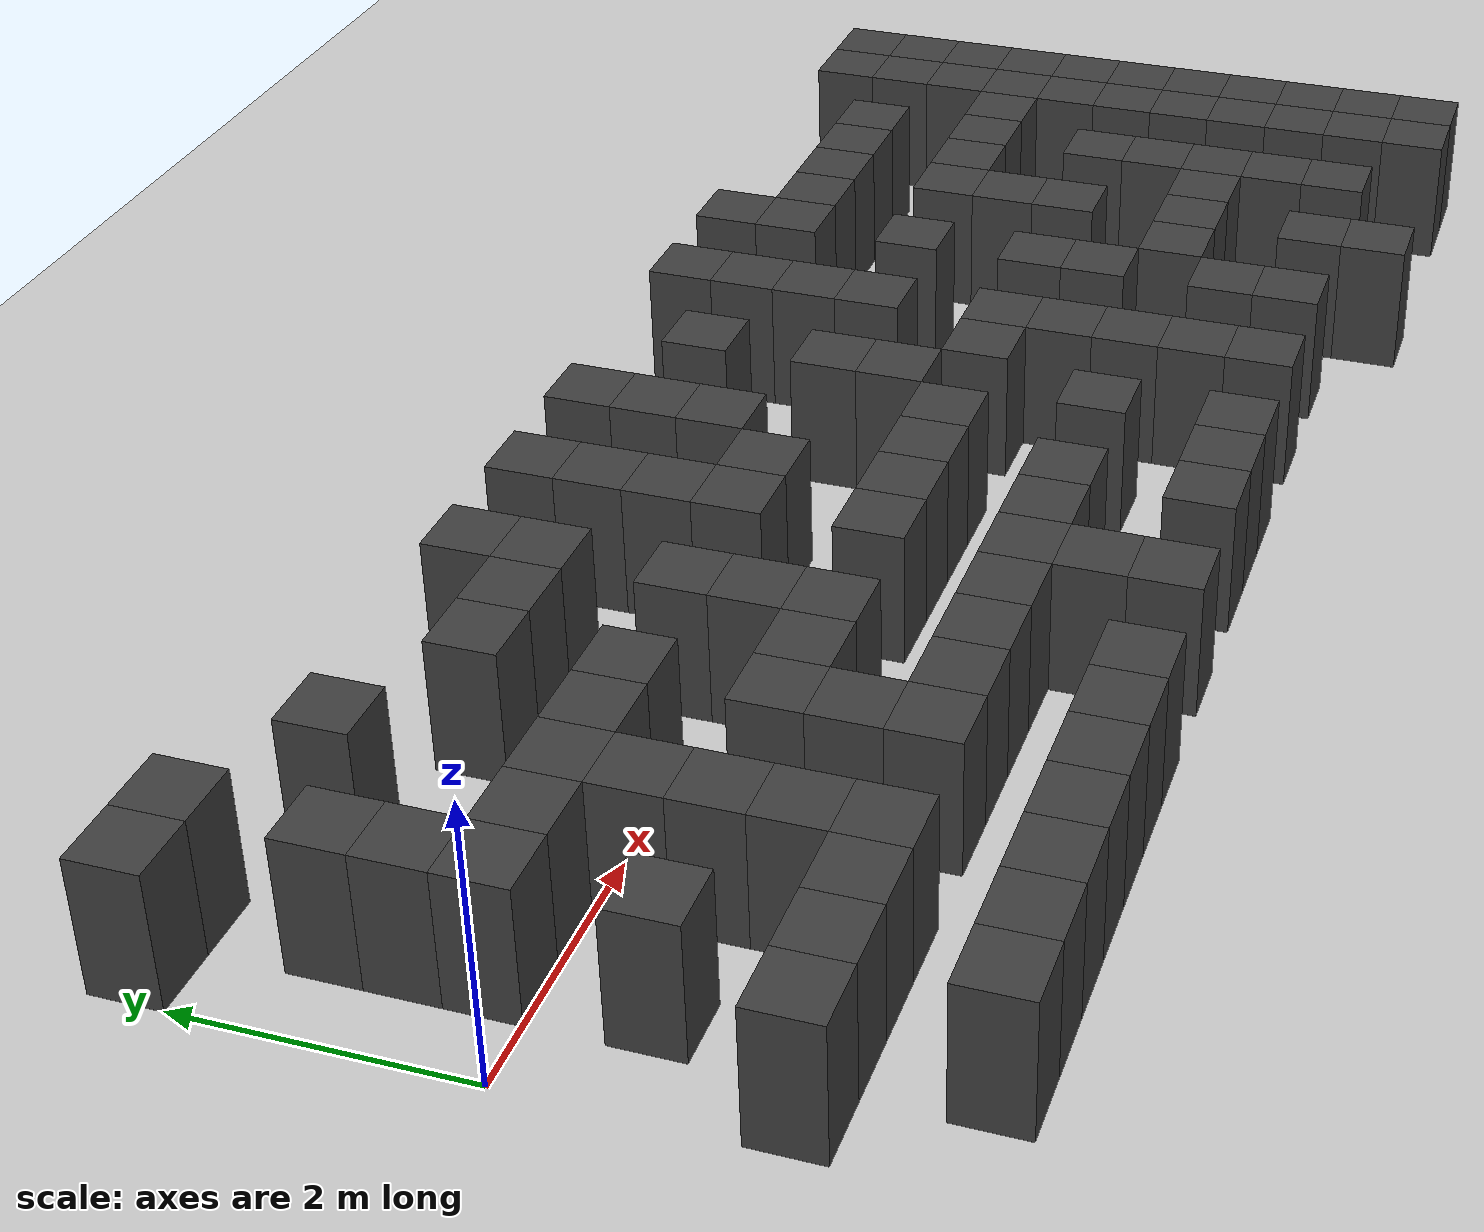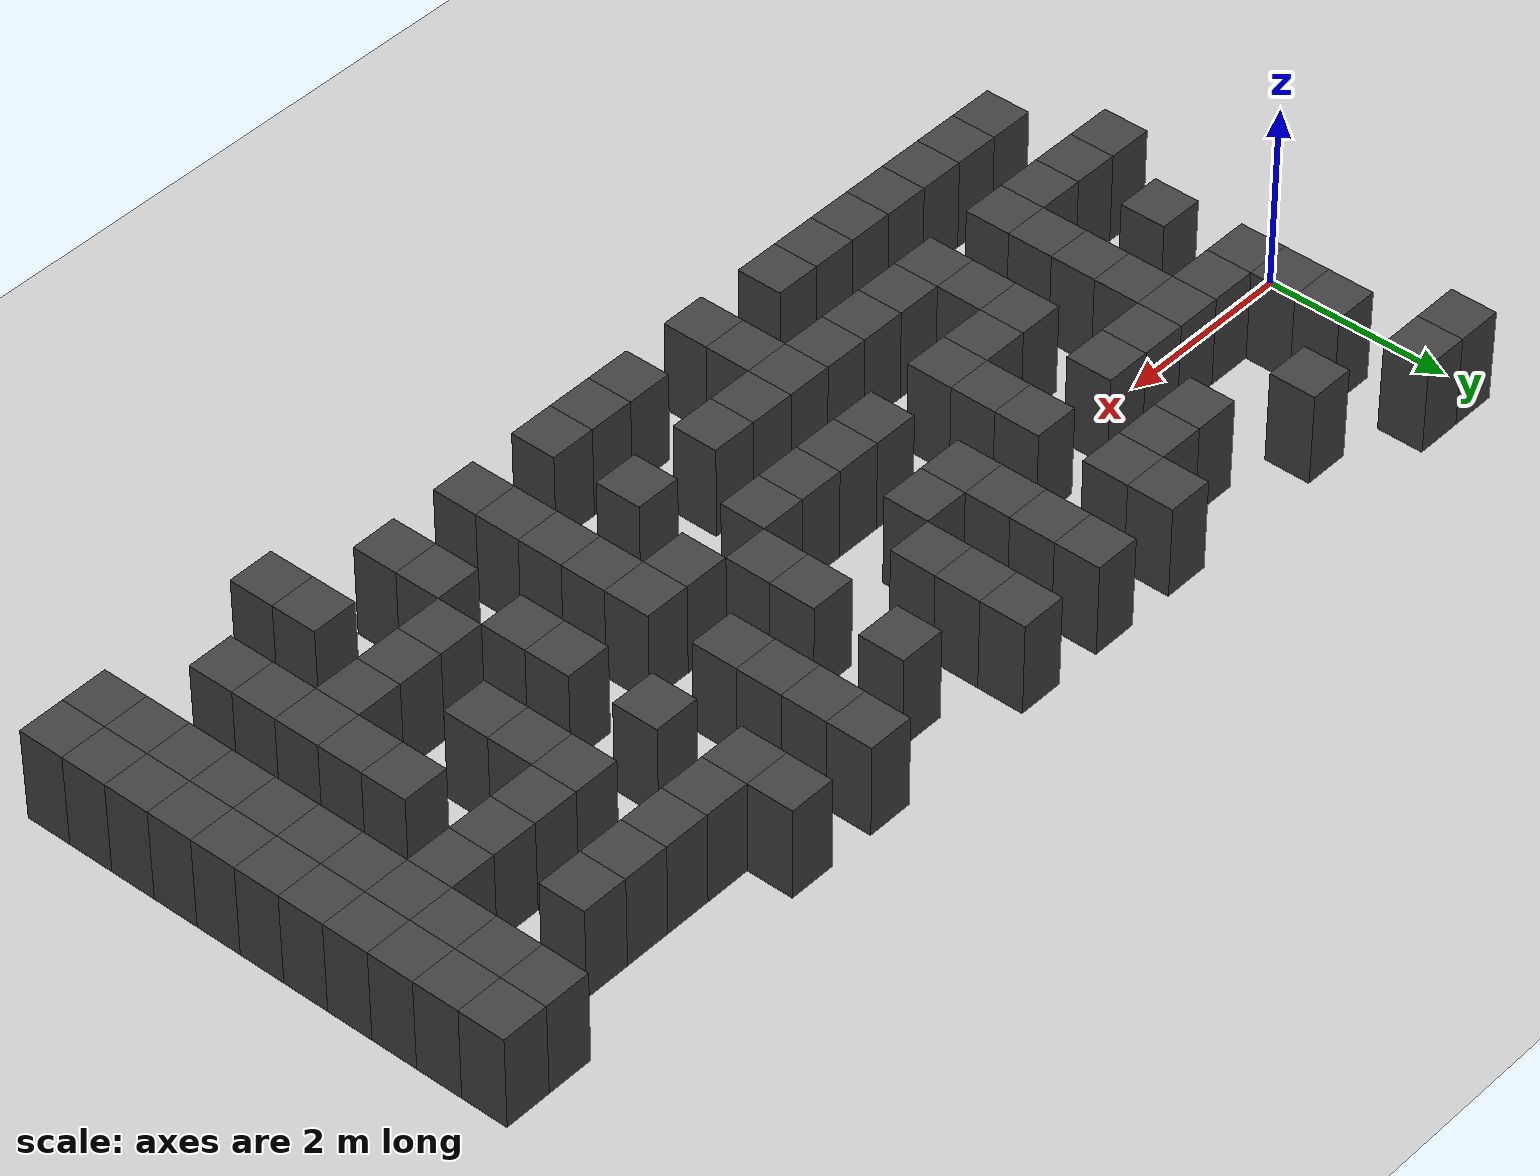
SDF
<sdf version="1.7">
 <world name="map_15497">
  <model name="ground_plane">
   <static>true</static>
   <link name="link">
    <collision name="collision">
     <geometry><plane><normal>0 0 1</normal><size>200 200</size></plane></geometry>
    </collision>
    <visual name="visual">
     <geometry><plane><normal>0 0 1</normal><size>200 200</size></plane></geometry>
     <material><ambient>0.8 0.8 0.8 1</ambient><diffuse>0.8 0.8 0.8 1</diffuse></material>
    </visual>
   </link>
  </model>
  <model name="maze_environment">
   <static>true</static>
   <link name="wall_480">
    <pose>0.250 2.250 0.500 0 0 0</pose>
    <collision name="col"><geometry><box><size>0.5 0.5 1.0</size></box></geometry></collision>
    <visual name="vis">
     <geometry><box><size>0.5 0.5 1.0</size></box></geometry>
     <material><ambient>0.15 0.15 0.15 1</ambient><diffuse>0.25 0.25 0.25 1</diffuse></material>
    </visual>
   </link>
   <link name="wall_481">
    <pose>0.750 2.250 0.500 0 0 0</pose>
    <collision name="col"><geometry><box><size>0.5 0.5 1.0</size></box></geometry></collision>
    <visual name="vis">
     <geometry><box><size>0.5 0.5 1.0</size></box></geometry>
     <material><ambient>0.15 0.15 0.15 1</ambient><diffuse>0.25 0.25 0.25 1</diffuse></material>
    </visual>
   </link>
   <link name="wall_502">
    <pose>1.750 1.750 0.500 0 0 0</pose>
    <collision name="col"><geometry><box><size>0.5 0.5 1.0</size></box></geometry></collision>
    <visual name="vis">
     <geometry><box><size>0.5 0.5 1.0</size></box></geometry>
     <material><ambient>0.15 0.15 0.15 1</ambient><diffuse>0.25 0.25 0.25 1</diffuse></material>
    </visual>
   </link>
   <link name="wall_503">
    <pose>3.750 1.750 0.500 0 0 0</pose>
    <collision name="col"><geometry><box><size>0.5 0.5 1.0</size></box></geometry></collision>
    <visual name="vis">
     <geometry><box><size>0.5 0.5 1.0</size></box></geometry>
     <material><ambient>0.15 0.15 0.15 1</ambient><diffuse>0.25 0.25 0.25 1</diffuse></material>
    </visual>
   </link>
   <link name="wall_504">
    <pose>4.750 1.750 0.500 0 0 0</pose>
    <collision name="col"><geometry><box><size>0.5 0.5 1.0</size></box></geometry></collision>
    <visual name="vis">
     <geometry><box><size>0.5 0.5 1.0</size></box></geometry>
     <material><ambient>0.15 0.15 0.15 1</ambient><diffuse>0.25 0.25 0.25 1</diffuse></material>
    </visual>
   </link>
   <link name="wall_505">
    <pose>5.750 1.750 0.500 0 0 0</pose>
    <collision name="col"><geometry><box><size>0.5 0.5 1.0</size></box></geometry></collision>
    <visual name="vis">
     <geometry><box><size>0.5 0.5 1.0</size></box></geometry>
     <material><ambient>0.15 0.15 0.15 1</ambient><diffuse>0.25 0.25 0.25 1</diffuse></material>
    </visual>
   </link>
   <link name="wall_506">
    <pose>7.750 1.750 0.500 0 0 0</pose>
    <collision name="col"><geometry><box><size>0.5 0.5 1.0</size></box></geometry></collision>
    <visual name="vis">
     <geometry><box><size>0.5 0.5 1.0</size></box></geometry>
     <material><ambient>0.15 0.15 0.15 1</ambient><diffuse>0.25 0.25 0.25 1</diffuse></material>
    </visual>
   </link>
   <link name="wall_507">
    <pose>8.750 1.750 0.500 0 0 0</pose>
    <collision name="col"><geometry><box><size>0.5 0.5 1.0</size></box></geometry></collision>
    <visual name="vis">
     <geometry><box><size>0.5 0.5 1.0</size></box></geometry>
     <material><ambient>0.15 0.15 0.15 1</ambient><diffuse>0.25 0.25 0.25 1</diffuse></material>
    </visual>
   </link>
   <link name="wall_508">
    <pose>11.750 1.750 0.500 0 0 0</pose>
    <collision name="col"><geometry><box><size>0.5 0.5 1.0</size></box></geometry></collision>
    <visual name="vis">
     <geometry><box><size>0.5 0.5 1.0</size></box></geometry>
     <material><ambient>0.15 0.15 0.15 1</ambient><diffuse>0.25 0.25 0.25 1</diffuse></material>
    </visual>
   </link>
   <link name="wall_509">
    <pose>12.250 1.750 0.500 0 0 0</pose>
    <collision name="col"><geometry><box><size>0.5 0.5 1.0</size></box></geometry></collision>
    <visual name="vis">
     <geometry><box><size>0.5 0.5 1.0</size></box></geometry>
     <material><ambient>0.15 0.15 0.15 1</ambient><diffuse>0.25 0.25 0.25 1</diffuse></material>
    </visual>
   </link>
   <link name="wall_531">
    <pose>0.750 1.250 0.500 0 0 0</pose>
    <collision name="col"><geometry><box><size>0.5 0.5 1.0</size></box></geometry></collision>
    <visual name="vis">
     <geometry><box><size>0.5 0.5 1.0</size></box></geometry>
     <material><ambient>0.15 0.15 0.15 1</ambient><diffuse>0.25 0.25 0.25 1</diffuse></material>
    </visual>
   </link>
   <link name="wall_532">
    <pose>2.750 1.250 0.500 0 0 0</pose>
    <collision name="col"><geometry><box><size>0.5 0.5 1.0</size></box></geometry></collision>
    <visual name="vis">
     <geometry><box><size>0.5 0.5 1.0</size></box></geometry>
     <material><ambient>0.15 0.15 0.15 1</ambient><diffuse>0.25 0.25 0.25 1</diffuse></material>
    </visual>
   </link>
   <link name="wall_533">
    <pose>3.250 1.250 0.500 0 0 0</pose>
    <collision name="col"><geometry><box><size>0.5 0.5 1.0</size></box></geometry></collision>
    <visual name="vis">
     <geometry><box><size>0.5 0.5 1.0</size></box></geometry>
     <material><ambient>0.15 0.15 0.15 1</ambient><diffuse>0.25 0.25 0.25 1</diffuse></material>
    </visual>
   </link>
   <link name="wall_534">
    <pose>3.750 1.250 0.500 0 0 0</pose>
    <collision name="col"><geometry><box><size>0.5 0.5 1.0</size></box></geometry></collision>
    <visual name="vis">
     <geometry><box><size>0.5 0.5 1.0</size></box></geometry>
     <material><ambient>0.15 0.15 0.15 1</ambient><diffuse>0.25 0.25 0.25 1</diffuse></material>
    </visual>
   </link>
   <link name="wall_535">
    <pose>4.750 1.250 0.500 0 0 0</pose>
    <collision name="col"><geometry><box><size>0.5 0.5 1.0</size></box></geometry></collision>
    <visual name="vis">
     <geometry><box><size>0.5 0.5 1.0</size></box></geometry>
     <material><ambient>0.15 0.15 0.15 1</ambient><diffuse>0.25 0.25 0.25 1</diffuse></material>
    </visual>
   </link>
   <link name="wall_536">
    <pose>5.750 1.250 0.500 0 0 0</pose>
    <collision name="col"><geometry><box><size>0.5 0.5 1.0</size></box></geometry></collision>
    <visual name="vis">
     <geometry><box><size>0.5 0.5 1.0</size></box></geometry>
     <material><ambient>0.15 0.15 0.15 1</ambient><diffuse>0.25 0.25 0.25 1</diffuse></material>
    </visual>
   </link>
   <link name="wall_537">
    <pose>6.750 1.250 0.500 0 0 0</pose>
    <collision name="col"><geometry><box><size>0.5 0.5 1.0</size></box></geometry></collision>
    <visual name="vis">
     <geometry><box><size>0.5 0.5 1.0</size></box></geometry>
     <material><ambient>0.15 0.15 0.15 1</ambient><diffuse>0.25 0.25 0.25 1</diffuse></material>
    </visual>
   </link>
   <link name="wall_538">
    <pose>7.750 1.250 0.500 0 0 0</pose>
    <collision name="col"><geometry><box><size>0.5 0.5 1.0</size></box></geometry></collision>
    <visual name="vis">
     <geometry><box><size>0.5 0.5 1.0</size></box></geometry>
     <material><ambient>0.15 0.15 0.15 1</ambient><diffuse>0.25 0.25 0.25 1</diffuse></material>
    </visual>
   </link>
   <link name="wall_539">
    <pose>8.750 1.250 0.500 0 0 0</pose>
    <collision name="col"><geometry><box><size>0.5 0.5 1.0</size></box></geometry></collision>
    <visual name="vis">
     <geometry><box><size>0.5 0.5 1.0</size></box></geometry>
     <material><ambient>0.15 0.15 0.15 1</ambient><diffuse>0.25 0.25 0.25 1</diffuse></material>
    </visual>
   </link>
   <link name="wall_540">
    <pose>9.250 1.250 0.500 0 0 0</pose>
    <collision name="col"><geometry><box><size>0.5 0.5 1.0</size></box></geometry></collision>
    <visual name="vis">
     <geometry><box><size>0.5 0.5 1.0</size></box></geometry>
     <material><ambient>0.15 0.15 0.15 1</ambient><diffuse>0.25 0.25 0.25 1</diffuse></material>
    </visual>
   </link>
   <link name="wall_541">
    <pose>9.750 1.250 0.500 0 0 0</pose>
    <collision name="col"><geometry><box><size>0.5 0.5 1.0</size></box></geometry></collision>
    <visual name="vis">
     <geometry><box><size>0.5 0.5 1.0</size></box></geometry>
     <material><ambient>0.15 0.15 0.15 1</ambient><diffuse>0.25 0.25 0.25 1</diffuse></material>
    </visual>
   </link>
   <link name="wall_542">
    <pose>10.250 1.250 0.500 0 0 0</pose>
    <collision name="col"><geometry><box><size>0.5 0.5 1.0</size></box></geometry></collision>
    <visual name="vis">
     <geometry><box><size>0.5 0.5 1.0</size></box></geometry>
     <material><ambient>0.15 0.15 0.15 1</ambient><diffuse>0.25 0.25 0.25 1</diffuse></material>
    </visual>
   </link>
   <link name="wall_543">
    <pose>10.750 1.250 0.500 0 0 0</pose>
    <collision name="col"><geometry><box><size>0.5 0.5 1.0</size></box></geometry></collision>
    <visual name="vis">
     <geometry><box><size>0.5 0.5 1.0</size></box></geometry>
     <material><ambient>0.15 0.15 0.15 1</ambient><diffuse>0.25 0.25 0.25 1</diffuse></material>
    </visual>
   </link>
   <link name="wall_544">
    <pose>11.750 1.250 0.500 0 0 0</pose>
    <collision name="col"><geometry><box><size>0.5 0.5 1.0</size></box></geometry></collision>
    <visual name="vis">
     <geometry><box><size>0.5 0.5 1.0</size></box></geometry>
     <material><ambient>0.15 0.15 0.15 1</ambient><diffuse>0.25 0.25 0.25 1</diffuse></material>
    </visual>
   </link>
   <link name="wall_545">
    <pose>12.250 1.250 0.500 0 0 0</pose>
    <collision name="col"><geometry><box><size>0.5 0.5 1.0</size></box></geometry></collision>
    <visual name="vis">
     <geometry><box><size>0.5 0.5 1.0</size></box></geometry>
     <material><ambient>0.15 0.15 0.15 1</ambient><diffuse>0.25 0.25 0.25 1</diffuse></material>
    </visual>
   </link>
   <link name="wall_551">
    <pose>0.750 0.750 0.500 0 0 0</pose>
    <collision name="col"><geometry><box><size>0.5 0.5 1.0</size></box></geometry></collision>
    <visual name="vis">
     <geometry><box><size>0.5 0.5 1.0</size></box></geometry>
     <material><ambient>0.15 0.15 0.15 1</ambient><diffuse>0.25 0.25 0.25 1</diffuse></material>
    </visual>
   </link>
   <link name="wall_552">
    <pose>4.750 0.750 0.500 0 0 0</pose>
    <collision name="col"><geometry><box><size>0.5 0.5 1.0</size></box></geometry></collision>
    <visual name="vis">
     <geometry><box><size>0.5 0.5 1.0</size></box></geometry>
     <material><ambient>0.15 0.15 0.15 1</ambient><diffuse>0.25 0.25 0.25 1</diffuse></material>
    </visual>
   </link>
   <link name="wall_553">
    <pose>5.750 0.750 0.500 0 0 0</pose>
    <collision name="col"><geometry><box><size>0.5 0.5 1.0</size></box></geometry></collision>
    <visual name="vis">
     <geometry><box><size>0.5 0.5 1.0</size></box></geometry>
     <material><ambient>0.15 0.15 0.15 1</ambient><diffuse>0.25 0.25 0.25 1</diffuse></material>
    </visual>
   </link>
   <link name="wall_554">
    <pose>7.750 0.750 0.500 0 0 0</pose>
    <collision name="col"><geometry><box><size>0.5 0.5 1.0</size></box></geometry></collision>
    <visual name="vis">
     <geometry><box><size>0.5 0.5 1.0</size></box></geometry>
     <material><ambient>0.15 0.15 0.15 1</ambient><diffuse>0.25 0.25 0.25 1</diffuse></material>
    </visual>
   </link>
   <link name="wall_555">
    <pose>11.750 0.750 0.500 0 0 0</pose>
    <collision name="col"><geometry><box><size>0.5 0.5 1.0</size></box></geometry></collision>
    <visual name="vis">
     <geometry><box><size>0.5 0.5 1.0</size></box></geometry>
     <material><ambient>0.15 0.15 0.15 1</ambient><diffuse>0.25 0.25 0.25 1</diffuse></material>
    </visual>
   </link>
   <link name="wall_556">
    <pose>12.250 0.750 0.500 0 0 0</pose>
    <collision name="col"><geometry><box><size>0.5 0.5 1.0</size></box></geometry></collision>
    <visual name="vis">
     <geometry><box><size>0.5 0.5 1.0</size></box></geometry>
     <material><ambient>0.15 0.15 0.15 1</ambient><diffuse>0.25 0.25 0.25 1</diffuse></material>
    </visual>
   </link>
   <link name="wall_576">
    <pose>0.750 0.250 0.500 0 0 0</pose>
    <collision name="col"><geometry><box><size>0.5 0.5 1.0</size></box></geometry></collision>
    <visual name="vis">
     <geometry><box><size>0.5 0.5 1.0</size></box></geometry>
     <material><ambient>0.15 0.15 0.15 1</ambient><diffuse>0.25 0.25 0.25 1</diffuse></material>
    </visual>
   </link>
   <link name="wall_577">
    <pose>1.250 0.250 0.500 0 0 0</pose>
    <collision name="col"><geometry><box><size>0.5 0.5 1.0</size></box></geometry></collision>
    <visual name="vis">
     <geometry><box><size>0.5 0.5 1.0</size></box></geometry>
     <material><ambient>0.15 0.15 0.15 1</ambient><diffuse>0.25 0.25 0.25 1</diffuse></material>
    </visual>
   </link>
   <link name="wall_578">
    <pose>1.750 0.250 0.500 0 0 0</pose>
    <collision name="col"><geometry><box><size>0.5 0.5 1.0</size></box></geometry></collision>
    <visual name="vis">
     <geometry><box><size>0.5 0.5 1.0</size></box></geometry>
     <material><ambient>0.15 0.15 0.15 1</ambient><diffuse>0.25 0.25 0.25 1</diffuse></material>
    </visual>
   </link>
   <link name="wall_579">
    <pose>2.250 0.250 0.500 0 0 0</pose>
    <collision name="col"><geometry><box><size>0.5 0.5 1.0</size></box></geometry></collision>
    <visual name="vis">
     <geometry><box><size>0.5 0.5 1.0</size></box></geometry>
     <material><ambient>0.15 0.15 0.15 1</ambient><diffuse>0.25 0.25 0.25 1</diffuse></material>
    </visual>
   </link>
   <link name="wall_580">
    <pose>2.750 0.250 0.500 0 0 0</pose>
    <collision name="col"><geometry><box><size>0.5 0.5 1.0</size></box></geometry></collision>
    <visual name="vis">
     <geometry><box><size>0.5 0.5 1.0</size></box></geometry>
     <material><ambient>0.15 0.15 0.15 1</ambient><diffuse>0.25 0.25 0.25 1</diffuse></material>
    </visual>
   </link>
   <link name="wall_581">
    <pose>3.750 0.250 0.500 0 0 0</pose>
    <collision name="col"><geometry><box><size>0.5 0.5 1.0</size></box></geometry></collision>
    <visual name="vis">
     <geometry><box><size>0.5 0.5 1.0</size></box></geometry>
     <material><ambient>0.15 0.15 0.15 1</ambient><diffuse>0.25 0.25 0.25 1</diffuse></material>
    </visual>
   </link>
   <link name="wall_582">
    <pose>4.750 0.250 0.500 0 0 0</pose>
    <collision name="col"><geometry><box><size>0.5 0.5 1.0</size></box></geometry></collision>
    <visual name="vis">
     <geometry><box><size>0.5 0.5 1.0</size></box></geometry>
     <material><ambient>0.15 0.15 0.15 1</ambient><diffuse>0.25 0.25 0.25 1</diffuse></material>
    </visual>
   </link>
   <link name="wall_583">
    <pose>5.250 0.250 0.500 0 0 0</pose>
    <collision name="col"><geometry><box><size>0.5 0.5 1.0</size></box></geometry></collision>
    <visual name="vis">
     <geometry><box><size>0.5 0.5 1.0</size></box></geometry>
     <material><ambient>0.15 0.15 0.15 1</ambient><diffuse>0.25 0.25 0.25 1</diffuse></material>
    </visual>
   </link>
   <link name="wall_584">
    <pose>6.750 0.250 0.500 0 0 0</pose>
    <collision name="col"><geometry><box><size>0.5 0.5 1.0</size></box></geometry></collision>
    <visual name="vis">
     <geometry><box><size>0.5 0.5 1.0</size></box></geometry>
     <material><ambient>0.15 0.15 0.15 1</ambient><diffuse>0.25 0.25 0.25 1</diffuse></material>
    </visual>
   </link>
   <link name="wall_585">
    <pose>7.750 0.250 0.500 0 0 0</pose>
    <collision name="col"><geometry><box><size>0.5 0.5 1.0</size></box></geometry></collision>
    <visual name="vis">
     <geometry><box><size>0.5 0.5 1.0</size></box></geometry>
     <material><ambient>0.15 0.15 0.15 1</ambient><diffuse>0.25 0.25 0.25 1</diffuse></material>
    </visual>
   </link>
   <link name="wall_586">
    <pose>8.750 0.250 0.500 0 0 0</pose>
    <collision name="col"><geometry><box><size>0.5 0.5 1.0</size></box></geometry></collision>
    <visual name="vis">
     <geometry><box><size>0.5 0.5 1.0</size></box></geometry>
     <material><ambient>0.15 0.15 0.15 1</ambient><diffuse>0.25 0.25 0.25 1</diffuse></material>
    </visual>
   </link>
   <link name="wall_587">
    <pose>9.750 0.250 0.500 0 0 0</pose>
    <collision name="col"><geometry><box><size>0.5 0.5 1.0</size></box></geometry></collision>
    <visual name="vis">
     <geometry><box><size>0.5 0.5 1.0</size></box></geometry>
     <material><ambient>0.15 0.15 0.15 1</ambient><diffuse>0.25 0.25 0.25 1</diffuse></material>
    </visual>
   </link>
   <link name="wall_588">
    <pose>10.250 0.250 0.500 0 0 0</pose>
    <collision name="col"><geometry><box><size>0.5 0.5 1.0</size></box></geometry></collision>
    <visual name="vis">
     <geometry><box><size>0.5 0.5 1.0</size></box></geometry>
     <material><ambient>0.15 0.15 0.15 1</ambient><diffuse>0.25 0.25 0.25 1</diffuse></material>
    </visual>
   </link>
   <link name="wall_589">
    <pose>10.750 0.250 0.500 0 0 0</pose>
    <collision name="col"><geometry><box><size>0.5 0.5 1.0</size></box></geometry></collision>
    <visual name="vis">
     <geometry><box><size>0.5 0.5 1.0</size></box></geometry>
     <material><ambient>0.15 0.15 0.15 1</ambient><diffuse>0.25 0.25 0.25 1</diffuse></material>
    </visual>
   </link>
   <link name="wall_590">
    <pose>11.250 0.250 0.500 0 0 0</pose>
    <collision name="col"><geometry><box><size>0.5 0.5 1.0</size></box></geometry></collision>
    <visual name="vis">
     <geometry><box><size>0.5 0.5 1.0</size></box></geometry>
     <material><ambient>0.15 0.15 0.15 1</ambient><diffuse>0.25 0.25 0.25 1</diffuse></material>
    </visual>
   </link>
   <link name="wall_591">
    <pose>11.750 0.250 0.500 0 0 0</pose>
    <collision name="col"><geometry><box><size>0.5 0.5 1.0</size></box></geometry></collision>
    <visual name="vis">
     <geometry><box><size>0.5 0.5 1.0</size></box></geometry>
     <material><ambient>0.15 0.15 0.15 1</ambient><diffuse>0.25 0.25 0.25 1</diffuse></material>
    </visual>
   </link>
   <link name="wall_592">
    <pose>12.250 0.250 0.500 0 0 0</pose>
    <collision name="col"><geometry><box><size>0.5 0.5 1.0</size></box></geometry></collision>
    <visual name="vis">
     <geometry><box><size>0.5 0.5 1.0</size></box></geometry>
     <material><ambient>0.15 0.15 0.15 1</ambient><diffuse>0.25 0.25 0.25 1</diffuse></material>
    </visual>
   </link>
   <link name="wall_602">
    <pose>1.750 -0.250 0.500 0 0 0</pose>
    <collision name="col"><geometry><box><size>0.5 0.5 1.0</size></box></geometry></collision>
    <visual name="vis">
     <geometry><box><size>0.5 0.5 1.0</size></box></geometry>
     <material><ambient>0.15 0.15 0.15 1</ambient><diffuse>0.25 0.25 0.25 1</diffuse></material>
    </visual>
   </link>
   <link name="wall_603">
    <pose>3.750 -0.250 0.500 0 0 0</pose>
    <collision name="col"><geometry><box><size>0.5 0.5 1.0</size></box></geometry></collision>
    <visual name="vis">
     <geometry><box><size>0.5 0.5 1.0</size></box></geometry>
     <material><ambient>0.15 0.15 0.15 1</ambient><diffuse>0.25 0.25 0.25 1</diffuse></material>
    </visual>
   </link>
   <link name="wall_604">
    <pose>6.750 -0.250 0.500 0 0 0</pose>
    <collision name="col"><geometry><box><size>0.5 0.5 1.0</size></box></geometry></collision>
    <visual name="vis">
     <geometry><box><size>0.5 0.5 1.0</size></box></geometry>
     <material><ambient>0.15 0.15 0.15 1</ambient><diffuse>0.25 0.25 0.25 1</diffuse></material>
    </visual>
   </link>
   <link name="wall_605">
    <pose>9.750 -0.250 0.500 0 0 0</pose>
    <collision name="col"><geometry><box><size>0.5 0.5 1.0</size></box></geometry></collision>
    <visual name="vis">
     <geometry><box><size>0.5 0.5 1.0</size></box></geometry>
     <material><ambient>0.15 0.15 0.15 1</ambient><diffuse>0.25 0.25 0.25 1</diffuse></material>
    </visual>
   </link>
   <link name="wall_606">
    <pose>11.750 -0.250 0.500 0 0 0</pose>
    <collision name="col"><geometry><box><size>0.5 0.5 1.0</size></box></geometry></collision>
    <visual name="vis">
     <geometry><box><size>0.5 0.5 1.0</size></box></geometry>
     <material><ambient>0.15 0.15 0.15 1</ambient><diffuse>0.25 0.25 0.25 1</diffuse></material>
    </visual>
   </link>
   <link name="wall_607">
    <pose>12.250 -0.250 0.500 0 0 0</pose>
    <collision name="col"><geometry><box><size>0.5 0.5 1.0</size></box></geometry></collision>
    <visual name="vis">
     <geometry><box><size>0.5 0.5 1.0</size></box></geometry>
     <material><ambient>0.15 0.15 0.15 1</ambient><diffuse>0.25 0.25 0.25 1</diffuse></material>
    </visual>
   </link>
   <link name="wall_621">
    <pose>0.750 -0.750 0.500 0 0 0</pose>
    <collision name="col"><geometry><box><size>0.5 0.5 1.0</size></box></geometry></collision>
    <visual name="vis">
     <geometry><box><size>0.5 0.5 1.0</size></box></geometry>
     <material><ambient>0.15 0.15 0.15 1</ambient><diffuse>0.25 0.25 0.25 1</diffuse></material>
    </visual>
   </link>
   <link name="wall_622">
    <pose>1.750 -0.750 0.500 0 0 0</pose>
    <collision name="col"><geometry><box><size>0.5 0.5 1.0</size></box></geometry></collision>
    <visual name="vis">
     <geometry><box><size>0.5 0.5 1.0</size></box></geometry>
     <material><ambient>0.15 0.15 0.15 1</ambient><diffuse>0.25 0.25 0.25 1</diffuse></material>
    </visual>
   </link>
   <link name="wall_623">
    <pose>2.750 -0.750 0.500 0 0 0</pose>
    <collision name="col"><geometry><box><size>0.5 0.5 1.0</size></box></geometry></collision>
    <visual name="vis">
     <geometry><box><size>0.5 0.5 1.0</size></box></geometry>
     <material><ambient>0.15 0.15 0.15 1</ambient><diffuse>0.25 0.25 0.25 1</diffuse></material>
    </visual>
   </link>
   <link name="wall_624">
    <pose>3.250 -0.750 0.500 0 0 0</pose>
    <collision name="col"><geometry><box><size>0.5 0.5 1.0</size></box></geometry></collision>
    <visual name="vis">
     <geometry><box><size>0.5 0.5 1.0</size></box></geometry>
     <material><ambient>0.15 0.15 0.15 1</ambient><diffuse>0.25 0.25 0.25 1</diffuse></material>
    </visual>
   </link>
   <link name="wall_625">
    <pose>3.750 -0.750 0.500 0 0 0</pose>
    <collision name="col"><geometry><box><size>0.5 0.5 1.0</size></box></geometry></collision>
    <visual name="vis">
     <geometry><box><size>0.5 0.5 1.0</size></box></geometry>
     <material><ambient>0.15 0.15 0.15 1</ambient><diffuse>0.25 0.25 0.25 1</diffuse></material>
    </visual>
   </link>
   <link name="wall_626">
    <pose>4.750 -0.750 0.500 0 0 0</pose>
    <collision name="col"><geometry><box><size>0.5 0.5 1.0</size></box></geometry></collision>
    <visual name="vis">
     <geometry><box><size>0.5 0.5 1.0</size></box></geometry>
     <material><ambient>0.15 0.15 0.15 1</ambient><diffuse>0.25 0.25 0.25 1</diffuse></material>
    </visual>
   </link>
   <link name="wall_627">
    <pose>5.250 -0.750 0.500 0 0 0</pose>
    <collision name="col"><geometry><box><size>0.5 0.5 1.0</size></box></geometry></collision>
    <visual name="vis">
     <geometry><box><size>0.5 0.5 1.0</size></box></geometry>
     <material><ambient>0.15 0.15 0.15 1</ambient><diffuse>0.25 0.25 0.25 1</diffuse></material>
    </visual>
   </link>
   <link name="wall_628">
    <pose>5.750 -0.750 0.500 0 0 0</pose>
    <collision name="col"><geometry><box><size>0.5 0.5 1.0</size></box></geometry></collision>
    <visual name="vis">
     <geometry><box><size>0.5 0.5 1.0</size></box></geometry>
     <material><ambient>0.15 0.15 0.15 1</ambient><diffuse>0.25 0.25 0.25 1</diffuse></material>
    </visual>
   </link>
   <link name="wall_629">
    <pose>6.250 -0.750 0.500 0 0 0</pose>
    <collision name="col"><geometry><box><size>0.5 0.5 1.0</size></box></geometry></collision>
    <visual name="vis">
     <geometry><box><size>0.5 0.5 1.0</size></box></geometry>
     <material><ambient>0.15 0.15 0.15 1</ambient><diffuse>0.25 0.25 0.25 1</diffuse></material>
    </visual>
   </link>
   <link name="wall_630">
    <pose>7.250 -0.750 0.500 0 0 0</pose>
    <collision name="col"><geometry><box><size>0.5 0.5 1.0</size></box></geometry></collision>
    <visual name="vis">
     <geometry><box><size>0.5 0.5 1.0</size></box></geometry>
     <material><ambient>0.15 0.15 0.15 1</ambient><diffuse>0.25 0.25 0.25 1</diffuse></material>
    </visual>
   </link>
   <link name="wall_631">
    <pose>7.750 -0.750 0.500 0 0 0</pose>
    <collision name="col"><geometry><box><size>0.5 0.5 1.0</size></box></geometry></collision>
    <visual name="vis">
     <geometry><box><size>0.5 0.5 1.0</size></box></geometry>
     <material><ambient>0.15 0.15 0.15 1</ambient><diffuse>0.25 0.25 0.25 1</diffuse></material>
    </visual>
   </link>
   <link name="wall_632">
    <pose>8.750 -0.750 0.500 0 0 0</pose>
    <collision name="col"><geometry><box><size>0.5 0.5 1.0</size></box></geometry></collision>
    <visual name="vis">
     <geometry><box><size>0.5 0.5 1.0</size></box></geometry>
     <material><ambient>0.15 0.15 0.15 1</ambient><diffuse>0.25 0.25 0.25 1</diffuse></material>
    </visual>
   </link>
   <link name="wall_633">
    <pose>9.750 -0.750 0.500 0 0 0</pose>
    <collision name="col"><geometry><box><size>0.5 0.5 1.0</size></box></geometry></collision>
    <visual name="vis">
     <geometry><box><size>0.5 0.5 1.0</size></box></geometry>
     <material><ambient>0.15 0.15 0.15 1</ambient><diffuse>0.25 0.25 0.25 1</diffuse></material>
    </visual>
   </link>
   <link name="wall_634">
    <pose>10.750 -0.750 0.500 0 0 0</pose>
    <collision name="col"><geometry><box><size>0.5 0.5 1.0</size></box></geometry></collision>
    <visual name="vis">
     <geometry><box><size>0.5 0.5 1.0</size></box></geometry>
     <material><ambient>0.15 0.15 0.15 1</ambient><diffuse>0.25 0.25 0.25 1</diffuse></material>
    </visual>
   </link>
   <link name="wall_635">
    <pose>11.750 -0.750 0.500 0 0 0</pose>
    <collision name="col"><geometry><box><size>0.5 0.5 1.0</size></box></geometry></collision>
    <visual name="vis">
     <geometry><box><size>0.5 0.5 1.0</size></box></geometry>
     <material><ambient>0.15 0.15 0.15 1</ambient><diffuse>0.25 0.25 0.25 1</diffuse></material>
    </visual>
   </link>
   <link name="wall_636">
    <pose>12.250 -0.750 0.500 0 0 0</pose>
    <collision name="col"><geometry><box><size>0.5 0.5 1.0</size></box></geometry></collision>
    <visual name="vis">
     <geometry><box><size>0.5 0.5 1.0</size></box></geometry>
     <material><ambient>0.15 0.15 0.15 1</ambient><diffuse>0.25 0.25 0.25 1</diffuse></material>
    </visual>
   </link>
   <link name="wall_642">
    <pose>1.750 -1.250 0.500 0 0 0</pose>
    <collision name="col"><geometry><box><size>0.5 0.5 1.0</size></box></geometry></collision>
    <visual name="vis">
     <geometry><box><size>0.5 0.5 1.0</size></box></geometry>
     <material><ambient>0.15 0.15 0.15 1</ambient><diffuse>0.25 0.25 0.25 1</diffuse></material>
    </visual>
   </link>
   <link name="wall_643">
    <pose>2.750 -1.250 0.500 0 0 0</pose>
    <collision name="col"><geometry><box><size>0.5 0.5 1.0</size></box></geometry></collision>
    <visual name="vis">
     <geometry><box><size>0.5 0.5 1.0</size></box></geometry>
     <material><ambient>0.15 0.15 0.15 1</ambient><diffuse>0.25 0.25 0.25 1</diffuse></material>
    </visual>
   </link>
   <link name="wall_644">
    <pose>7.750 -1.250 0.500 0 0 0</pose>
    <collision name="col"><geometry><box><size>0.5 0.5 1.0</size></box></geometry></collision>
    <visual name="vis">
     <geometry><box><size>0.5 0.5 1.0</size></box></geometry>
     <material><ambient>0.15 0.15 0.15 1</ambient><diffuse>0.25 0.25 0.25 1</diffuse></material>
    </visual>
   </link>
   <link name="wall_645">
    <pose>8.750 -1.250 0.500 0 0 0</pose>
    <collision name="col"><geometry><box><size>0.5 0.5 1.0</size></box></geometry></collision>
    <visual name="vis">
     <geometry><box><size>0.5 0.5 1.0</size></box></geometry>
     <material><ambient>0.15 0.15 0.15 1</ambient><diffuse>0.25 0.25 0.25 1</diffuse></material>
    </visual>
   </link>
   <link name="wall_646">
    <pose>10.750 -1.250 0.500 0 0 0</pose>
    <collision name="col"><geometry><box><size>0.5 0.5 1.0</size></box></geometry></collision>
    <visual name="vis">
     <geometry><box><size>0.5 0.5 1.0</size></box></geometry>
     <material><ambient>0.15 0.15 0.15 1</ambient><diffuse>0.25 0.25 0.25 1</diffuse></material>
    </visual>
   </link>
   <link name="wall_647">
    <pose>11.750 -1.250 0.500 0 0 0</pose>
    <collision name="col"><geometry><box><size>0.5 0.5 1.0</size></box></geometry></collision>
    <visual name="vis">
     <geometry><box><size>0.5 0.5 1.0</size></box></geometry>
     <material><ambient>0.15 0.15 0.15 1</ambient><diffuse>0.25 0.25 0.25 1</diffuse></material>
    </visual>
   </link>
   <link name="wall_648">
    <pose>12.250 -1.250 0.500 0 0 0</pose>
    <collision name="col"><geometry><box><size>0.5 0.5 1.0</size></box></geometry></collision>
    <visual name="vis">
     <geometry><box><size>0.5 0.5 1.0</size></box></geometry>
     <material><ambient>0.15 0.15 0.15 1</ambient><diffuse>0.25 0.25 0.25 1</diffuse></material>
    </visual>
   </link>
   <link name="wall_671">
    <pose>0.250 -1.750 0.500 0 0 0</pose>
    <collision name="col"><geometry><box><size>0.5 0.5 1.0</size></box></geometry></collision>
    <visual name="vis">
     <geometry><box><size>0.5 0.5 1.0</size></box></geometry>
     <material><ambient>0.15 0.15 0.15 1</ambient><diffuse>0.25 0.25 0.25 1</diffuse></material>
    </visual>
   </link>
   <link name="wall_672">
    <pose>0.750 -1.750 0.500 0 0 0</pose>
    <collision name="col"><geometry><box><size>0.5 0.5 1.0</size></box></geometry></collision>
    <visual name="vis">
     <geometry><box><size>0.5 0.5 1.0</size></box></geometry>
     <material><ambient>0.15 0.15 0.15 1</ambient><diffuse>0.25 0.25 0.25 1</diffuse></material>
    </visual>
   </link>
   <link name="wall_673">
    <pose>1.250 -1.750 0.500 0 0 0</pose>
    <collision name="col"><geometry><box><size>0.5 0.5 1.0</size></box></geometry></collision>
    <visual name="vis">
     <geometry><box><size>0.5 0.5 1.0</size></box></geometry>
     <material><ambient>0.15 0.15 0.15 1</ambient><diffuse>0.25 0.25 0.25 1</diffuse></material>
    </visual>
   </link>
   <link name="wall_674">
    <pose>1.750 -1.750 0.500 0 0 0</pose>
    <collision name="col"><geometry><box><size>0.5 0.5 1.0</size></box></geometry></collision>
    <visual name="vis">
     <geometry><box><size>0.5 0.5 1.0</size></box></geometry>
     <material><ambient>0.15 0.15 0.15 1</ambient><diffuse>0.25 0.25 0.25 1</diffuse></material>
    </visual>
   </link>
   <link name="wall_675">
    <pose>2.750 -1.750 0.500 0 0 0</pose>
    <collision name="col"><geometry><box><size>0.5 0.5 1.0</size></box></geometry></collision>
    <visual name="vis">
     <geometry><box><size>0.5 0.5 1.0</size></box></geometry>
     <material><ambient>0.15 0.15 0.15 1</ambient><diffuse>0.25 0.25 0.25 1</diffuse></material>
    </visual>
   </link>
   <link name="wall_676">
    <pose>3.250 -1.750 0.500 0 0 0</pose>
    <collision name="col"><geometry><box><size>0.5 0.5 1.0</size></box></geometry></collision>
    <visual name="vis">
     <geometry><box><size>0.5 0.5 1.0</size></box></geometry>
     <material><ambient>0.15 0.15 0.15 1</ambient><diffuse>0.25 0.25 0.25 1</diffuse></material>
    </visual>
   </link>
   <link name="wall_677">
    <pose>3.750 -1.750 0.500 0 0 0</pose>
    <collision name="col"><geometry><box><size>0.5 0.5 1.0</size></box></geometry></collision>
    <visual name="vis">
     <geometry><box><size>0.5 0.5 1.0</size></box></geometry>
     <material><ambient>0.15 0.15 0.15 1</ambient><diffuse>0.25 0.25 0.25 1</diffuse></material>
    </visual>
   </link>
   <link name="wall_678">
    <pose>4.250 -1.750 0.500 0 0 0</pose>
    <collision name="col"><geometry><box><size>0.5 0.5 1.0</size></box></geometry></collision>
    <visual name="vis">
     <geometry><box><size>0.5 0.5 1.0</size></box></geometry>
     <material><ambient>0.15 0.15 0.15 1</ambient><diffuse>0.25 0.25 0.25 1</diffuse></material>
    </visual>
   </link>
   <link name="wall_679">
    <pose>4.750 -1.750 0.500 0 0 0</pose>
    <collision name="col"><geometry><box><size>0.5 0.5 1.0</size></box></geometry></collision>
    <visual name="vis">
     <geometry><box><size>0.5 0.5 1.0</size></box></geometry>
     <material><ambient>0.15 0.15 0.15 1</ambient><diffuse>0.25 0.25 0.25 1</diffuse></material>
    </visual>
   </link>
   <link name="wall_680">
    <pose>5.250 -1.750 0.500 0 0 0</pose>
    <collision name="col"><geometry><box><size>0.5 0.5 1.0</size></box></geometry></collision>
    <visual name="vis">
     <geometry><box><size>0.5 0.5 1.0</size></box></geometry>
     <material><ambient>0.15 0.15 0.15 1</ambient><diffuse>0.25 0.25 0.25 1</diffuse></material>
    </visual>
   </link>
   <link name="wall_681">
    <pose>5.750 -1.750 0.500 0 0 0</pose>
    <collision name="col"><geometry><box><size>0.5 0.5 1.0</size></box></geometry></collision>
    <visual name="vis">
     <geometry><box><size>0.5 0.5 1.0</size></box></geometry>
     <material><ambient>0.15 0.15 0.15 1</ambient><diffuse>0.25 0.25 0.25 1</diffuse></material>
    </visual>
   </link>
   <link name="wall_682">
    <pose>6.750 -1.750 0.500 0 0 0</pose>
    <collision name="col"><geometry><box><size>0.5 0.5 1.0</size></box></geometry></collision>
    <visual name="vis">
     <geometry><box><size>0.5 0.5 1.0</size></box></geometry>
     <material><ambient>0.15 0.15 0.15 1</ambient><diffuse>0.25 0.25 0.25 1</diffuse></material>
    </visual>
   </link>
   <link name="wall_683">
    <pose>7.750 -1.750 0.500 0 0 0</pose>
    <collision name="col"><geometry><box><size>0.5 0.5 1.0</size></box></geometry></collision>
    <visual name="vis">
     <geometry><box><size>0.5 0.5 1.0</size></box></geometry>
     <material><ambient>0.15 0.15 0.15 1</ambient><diffuse>0.25 0.25 0.25 1</diffuse></material>
    </visual>
   </link>
   <link name="wall_684">
    <pose>9.250 -1.750 0.500 0 0 0</pose>
    <collision name="col"><geometry><box><size>0.5 0.5 1.0</size></box></geometry></collision>
    <visual name="vis">
     <geometry><box><size>0.5 0.5 1.0</size></box></geometry>
     <material><ambient>0.15 0.15 0.15 1</ambient><diffuse>0.25 0.25 0.25 1</diffuse></material>
    </visual>
   </link>
   <link name="wall_685">
    <pose>9.750 -1.750 0.500 0 0 0</pose>
    <collision name="col"><geometry><box><size>0.5 0.5 1.0</size></box></geometry></collision>
    <visual name="vis">
     <geometry><box><size>0.5 0.5 1.0</size></box></geometry>
     <material><ambient>0.15 0.15 0.15 1</ambient><diffuse>0.25 0.25 0.25 1</diffuse></material>
    </visual>
   </link>
   <link name="wall_686">
    <pose>10.250 -1.750 0.500 0 0 0</pose>
    <collision name="col"><geometry><box><size>0.5 0.5 1.0</size></box></geometry></collision>
    <visual name="vis">
     <geometry><box><size>0.5 0.5 1.0</size></box></geometry>
     <material><ambient>0.15 0.15 0.15 1</ambient><diffuse>0.25 0.25 0.25 1</diffuse></material>
    </visual>
   </link>
   <link name="wall_687">
    <pose>10.750 -1.750 0.500 0 0 0</pose>
    <collision name="col"><geometry><box><size>0.5 0.5 1.0</size></box></geometry></collision>
    <visual name="vis">
     <geometry><box><size>0.5 0.5 1.0</size></box></geometry>
     <material><ambient>0.15 0.15 0.15 1</ambient><diffuse>0.25 0.25 0.25 1</diffuse></material>
    </visual>
   </link>
   <link name="wall_688">
    <pose>11.750 -1.750 0.500 0 0 0</pose>
    <collision name="col"><geometry><box><size>0.5 0.5 1.0</size></box></geometry></collision>
    <visual name="vis">
     <geometry><box><size>0.5 0.5 1.0</size></box></geometry>
     <material><ambient>0.15 0.15 0.15 1</ambient><diffuse>0.25 0.25 0.25 1</diffuse></material>
    </visual>
   </link>
   <link name="wall_689">
    <pose>12.250 -1.750 0.500 0 0 0</pose>
    <collision name="col"><geometry><box><size>0.5 0.5 1.0</size></box></geometry></collision>
    <visual name="vis">
     <geometry><box><size>0.5 0.5 1.0</size></box></geometry>
     <material><ambient>0.15 0.15 0.15 1</ambient><diffuse>0.25 0.25 0.25 1</diffuse></material>
    </visual>
   </link>
   <link name="wall_695">
    <pose>4.750 -2.250 0.500 0 0 0</pose>
    <collision name="col"><geometry><box><size>0.5 0.5 1.0</size></box></geometry></collision>
    <visual name="vis">
     <geometry><box><size>0.5 0.5 1.0</size></box></geometry>
     <material><ambient>0.15 0.15 0.15 1</ambient><diffuse>0.25 0.25 0.25 1</diffuse></material>
    </visual>
   </link>
   <link name="wall_696">
    <pose>7.750 -2.250 0.500 0 0 0</pose>
    <collision name="col"><geometry><box><size>0.5 0.5 1.0</size></box></geometry></collision>
    <visual name="vis">
     <geometry><box><size>0.5 0.5 1.0</size></box></geometry>
     <material><ambient>0.15 0.15 0.15 1</ambient><diffuse>0.25 0.25 0.25 1</diffuse></material>
    </visual>
   </link>
   <link name="wall_697">
    <pose>8.750 -2.250 0.500 0 0 0</pose>
    <collision name="col"><geometry><box><size>0.5 0.5 1.0</size></box></geometry></collision>
    <visual name="vis">
     <geometry><box><size>0.5 0.5 1.0</size></box></geometry>
     <material><ambient>0.15 0.15 0.15 1</ambient><diffuse>0.25 0.25 0.25 1</diffuse></material>
    </visual>
   </link>
   <link name="wall_698">
    <pose>10.750 -2.250 0.500 0 0 0</pose>
    <collision name="col"><geometry><box><size>0.5 0.5 1.0</size></box></geometry></collision>
    <visual name="vis">
     <geometry><box><size>0.5 0.5 1.0</size></box></geometry>
     <material><ambient>0.15 0.15 0.15 1</ambient><diffuse>0.25 0.25 0.25 1</diffuse></material>
    </visual>
   </link>
   <link name="wall_699">
    <pose>11.750 -2.250 0.500 0 0 0</pose>
    <collision name="col"><geometry><box><size>0.5 0.5 1.0</size></box></geometry></collision>
    <visual name="vis">
     <geometry><box><size>0.5 0.5 1.0</size></box></geometry>
     <material><ambient>0.15 0.15 0.15 1</ambient><diffuse>0.25 0.25 0.25 1</diffuse></material>
    </visual>
   </link>
   <link name="wall_700">
    <pose>12.250 -2.250 0.500 0 0 0</pose>
    <collision name="col"><geometry><box><size>0.5 0.5 1.0</size></box></geometry></collision>
    <visual name="vis">
     <geometry><box><size>0.5 0.5 1.0</size></box></geometry>
     <material><ambient>0.15 0.15 0.15 1</ambient><diffuse>0.25 0.25 0.25 1</diffuse></material>
    </visual>
   </link>
   <link name="wall_718">
    <pose>0.750 -2.750 0.500 0 0 0</pose>
    <collision name="col"><geometry><box><size>0.5 0.5 1.0</size></box></geometry></collision>
    <visual name="vis">
     <geometry><box><size>0.5 0.5 1.0</size></box></geometry>
     <material><ambient>0.15 0.15 0.15 1</ambient><diffuse>0.25 0.25 0.25 1</diffuse></material>
    </visual>
   </link>
   <link name="wall_719">
    <pose>1.250 -2.750 0.500 0 0 0</pose>
    <collision name="col"><geometry><box><size>0.5 0.5 1.0</size></box></geometry></collision>
    <visual name="vis">
     <geometry><box><size>0.5 0.5 1.0</size></box></geometry>
     <material><ambient>0.15 0.15 0.15 1</ambient><diffuse>0.25 0.25 0.25 1</diffuse></material>
    </visual>
   </link>
   <link name="wall_720">
    <pose>1.750 -2.750 0.500 0 0 0</pose>
    <collision name="col"><geometry><box><size>0.5 0.5 1.0</size></box></geometry></collision>
    <visual name="vis">
     <geometry><box><size>0.5 0.5 1.0</size></box></geometry>
     <material><ambient>0.15 0.15 0.15 1</ambient><diffuse>0.25 0.25 0.25 1</diffuse></material>
    </visual>
   </link>
   <link name="wall_721">
    <pose>2.250 -2.750 0.500 0 0 0</pose>
    <collision name="col"><geometry><box><size>0.5 0.5 1.0</size></box></geometry></collision>
    <visual name="vis">
     <geometry><box><size>0.5 0.5 1.0</size></box></geometry>
     <material><ambient>0.15 0.15 0.15 1</ambient><diffuse>0.25 0.25 0.25 1</diffuse></material>
    </visual>
   </link>
   <link name="wall_722">
    <pose>2.750 -2.750 0.500 0 0 0</pose>
    <collision name="col"><geometry><box><size>0.5 0.5 1.0</size></box></geometry></collision>
    <visual name="vis">
     <geometry><box><size>0.5 0.5 1.0</size></box></geometry>
     <material><ambient>0.15 0.15 0.15 1</ambient><diffuse>0.25 0.25 0.25 1</diffuse></material>
    </visual>
   </link>
   <link name="wall_723">
    <pose>3.250 -2.750 0.500 0 0 0</pose>
    <collision name="col"><geometry><box><size>0.5 0.5 1.0</size></box></geometry></collision>
    <visual name="vis">
     <geometry><box><size>0.5 0.5 1.0</size></box></geometry>
     <material><ambient>0.15 0.15 0.15 1</ambient><diffuse>0.25 0.25 0.25 1</diffuse></material>
    </visual>
   </link>
   <link name="wall_724">
    <pose>3.750 -2.750 0.500 0 0 0</pose>
    <collision name="col"><geometry><box><size>0.5 0.5 1.0</size></box></geometry></collision>
    <visual name="vis">
     <geometry><box><size>0.5 0.5 1.0</size></box></geometry>
     <material><ambient>0.15 0.15 0.15 1</ambient><diffuse>0.25 0.25 0.25 1</diffuse></material>
    </visual>
   </link>
   <link name="wall_725">
    <pose>4.750 -2.750 0.500 0 0 0</pose>
    <collision name="col"><geometry><box><size>0.5 0.5 1.0</size></box></geometry></collision>
    <visual name="vis">
     <geometry><box><size>0.5 0.5 1.0</size></box></geometry>
     <material><ambient>0.15 0.15 0.15 1</ambient><diffuse>0.25 0.25 0.25 1</diffuse></material>
    </visual>
   </link>
   <link name="wall_726">
    <pose>5.750 -2.750 0.500 0 0 0</pose>
    <collision name="col"><geometry><box><size>0.5 0.5 1.0</size></box></geometry></collision>
    <visual name="vis">
     <geometry><box><size>0.5 0.5 1.0</size></box></geometry>
     <material><ambient>0.15 0.15 0.15 1</ambient><diffuse>0.25 0.25 0.25 1</diffuse></material>
    </visual>
   </link>
   <link name="wall_727">
    <pose>6.250 -2.750 0.500 0 0 0</pose>
    <collision name="col"><geometry><box><size>0.5 0.5 1.0</size></box></geometry></collision>
    <visual name="vis">
     <geometry><box><size>0.5 0.5 1.0</size></box></geometry>
     <material><ambient>0.15 0.15 0.15 1</ambient><diffuse>0.25 0.25 0.25 1</diffuse></material>
    </visual>
   </link>
   <link name="wall_728">
    <pose>6.750 -2.750 0.500 0 0 0</pose>
    <collision name="col"><geometry><box><size>0.5 0.5 1.0</size></box></geometry></collision>
    <visual name="vis">
     <geometry><box><size>0.5 0.5 1.0</size></box></geometry>
     <material><ambient>0.15 0.15 0.15 1</ambient><diffuse>0.25 0.25 0.25 1</diffuse></material>
    </visual>
   </link>
   <link name="wall_729">
    <pose>7.750 -2.750 0.500 0 0 0</pose>
    <collision name="col"><geometry><box><size>0.5 0.5 1.0</size></box></geometry></collision>
    <visual name="vis">
     <geometry><box><size>0.5 0.5 1.0</size></box></geometry>
     <material><ambient>0.15 0.15 0.15 1</ambient><diffuse>0.25 0.25 0.25 1</diffuse></material>
    </visual>
   </link>
   <link name="wall_730">
    <pose>8.750 -2.750 0.500 0 0 0</pose>
    <collision name="col"><geometry><box><size>0.5 0.5 1.0</size></box></geometry></collision>
    <visual name="vis">
     <geometry><box><size>0.5 0.5 1.0</size></box></geometry>
     <material><ambient>0.15 0.15 0.15 1</ambient><diffuse>0.25 0.25 0.25 1</diffuse></material>
    </visual>
   </link>
   <link name="wall_731">
    <pose>9.750 -2.750 0.500 0 0 0</pose>
    <collision name="col"><geometry><box><size>0.5 0.5 1.0</size></box></geometry></collision>
    <visual name="vis">
     <geometry><box><size>0.5 0.5 1.0</size></box></geometry>
     <material><ambient>0.15 0.15 0.15 1</ambient><diffuse>0.25 0.25 0.25 1</diffuse></material>
    </visual>
   </link>
   <link name="wall_732">
    <pose>10.750 -2.750 0.500 0 0 0</pose>
    <collision name="col"><geometry><box><size>0.5 0.5 1.0</size></box></geometry></collision>
    <visual name="vis">
     <geometry><box><size>0.5 0.5 1.0</size></box></geometry>
     <material><ambient>0.15 0.15 0.15 1</ambient><diffuse>0.25 0.25 0.25 1</diffuse></material>
    </visual>
   </link>
   <link name="wall_733">
    <pose>11.750 -2.750 0.500 0 0 0</pose>
    <collision name="col"><geometry><box><size>0.5 0.5 1.0</size></box></geometry></collision>
    <visual name="vis">
     <geometry><box><size>0.5 0.5 1.0</size></box></geometry>
     <material><ambient>0.15 0.15 0.15 1</ambient><diffuse>0.25 0.25 0.25 1</diffuse></material>
    </visual>
   </link>
   <link name="wall_734">
    <pose>12.250 -2.750 0.500 0 0 0</pose>
    <collision name="col"><geometry><box><size>0.5 0.5 1.0</size></box></geometry></collision>
    <visual name="vis">
     <geometry><box><size>0.5 0.5 1.0</size></box></geometry>
     <material><ambient>0.15 0.15 0.15 1</ambient><diffuse>0.25 0.25 0.25 1</diffuse></material>
    </visual>
   </link>
   <link name="wall_747">
    <pose>9.750 -3.250 0.500 0 0 0</pose>
    <collision name="col"><geometry><box><size>0.5 0.5 1.0</size></box></geometry></collision>
    <visual name="vis">
     <geometry><box><size>0.5 0.5 1.0</size></box></geometry>
     <material><ambient>0.15 0.15 0.15 1</ambient><diffuse>0.25 0.25 0.25 1</diffuse></material>
    </visual>
   </link>
   <link name="wall_748">
    <pose>11.750 -3.250 0.500 0 0 0</pose>
    <collision name="col"><geometry><box><size>0.5 0.5 1.0</size></box></geometry></collision>
    <visual name="vis">
     <geometry><box><size>0.5 0.5 1.0</size></box></geometry>
     <material><ambient>0.15 0.15 0.15 1</ambient><diffuse>0.25 0.25 0.25 1</diffuse></material>
    </visual>
   </link>
   <link name="wall_749">
    <pose>12.250 -3.250 0.500 0 0 0</pose>
    <collision name="col"><geometry><box><size>0.5 0.5 1.0</size></box></geometry></collision>
    <visual name="vis">
     <geometry><box><size>0.5 0.5 1.0</size></box></geometry>
     <material><ambient>0.15 0.15 0.15 1</ambient><diffuse>0.25 0.25 0.25 1</diffuse></material>
    </visual>
   </link>
  </model>
 </world>
</sdf>
